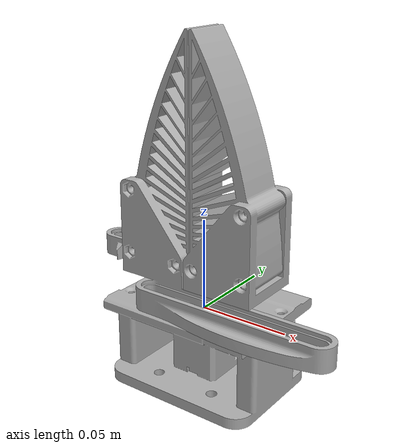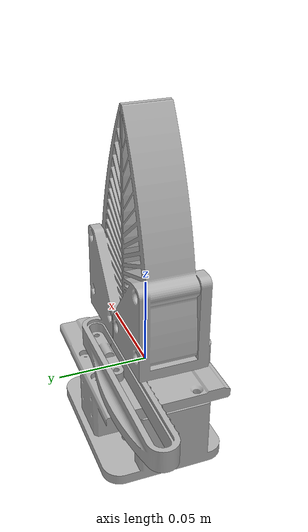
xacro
<?xml version="1.0" ?>
<robot name="gripper_urdf" xmlns:xacro="http://www.ros.org/wiki/xacro">

<xacro:include filename="/home/andres/Documents/jiwon/create_asset/gripper_urdf_description/urdf/materials.xacro" />
<xacro:include filename="/home/andres/Documents/jiwon/create_asset/gripper_urdf_description/urdf/gripper_urdf.trans" />
<xacro:include filename="/home/andres/Documents/jiwon/create_asset/gripper_urdf_description/urdf/gripper_urdf.gazebo" />
<link name="base_link">
  <inertial>
    <origin xyz="-3.8976421872587524e-05 0.005031022969519505 -0.018471415017622762" rpy="0 0 0"/>
    <mass value="1.1963260015017612"/>
    <inertia ixx="0.000695" iyy="0.001149" izz="0.001162" ixy="-0.0" iyz="6e-06" ixz="1e-06"/>
  </inertial>
  <visual>
    <origin xyz="0 0 0" rpy="0 0 0"/>
    <geometry>
      <mesh filename="file:///home/andres/Documents/jiwon/create_asset/gripper_urdf_description/meshes/base_link.stl" scale="0.001 0.001 0.001"/>
    </geometry>
    <material name="silver"/>
  </visual>
  <collision>
    <origin xyz="0 0 0" rpy="0 0 0"/>
    <geometry>
      <mesh filename="file:///home/andres/Documents/jiwon/create_asset/gripper_urdf_description/meshes/base_link.stl" scale="0.001 0.001 0.001"/>
    </geometry>
  </collision>
</link>

<link name="finger1_1">
  <inertial>
    <origin xyz="0.006267940831225318 -0.019307371798998357 0.037197711345199495" rpy="0 0 0"/>
    <mass value="0.7015582516227633"/>
    <inertia ixx="0.000915" iyy="0.001242" izz="0.000564" ixy="0.000115" iyz="0.0001" ixz="-0.000163"/>
  </inertial>
  <visual>
    <origin xyz="-0.005 -0.023 -0.01025" rpy="0 0 0"/>
    <geometry>
      <mesh filename="file:///home/andres/Documents/jiwon/create_asset/gripper_urdf_description/meshes/finger1_1.stl" scale="0.001 0.001 0.001"/>
    </geometry>
    <material name="silver"/>
  </visual>
  <collision>
    <origin xyz="-0.005 -0.023 -0.01025" rpy="0 0 0"/>
    <geometry>
      <mesh filename="file:///home/andres/Documents/jiwon/create_asset/gripper_urdf_description/meshes/finger1_1.stl" scale="0.001 0.001 0.001"/>
    </geometry>
  </collision>
</link>

<link name="finger2_1">
  <inertial>
    <origin xyz="-0.016267982103923186 0.01930737450738287 0.03719773168129449" rpy="0 0 0"/>
    <mass value="0.7015578560870854"/>
    <inertia ixx="0.000915" iyy="0.001242" izz="0.000564" ixy="0.000115" iyz="-0.0001" ixz="0.000163"/>
  </inertial>
  <visual>
    <origin xyz="-0.005 0.023 -0.01025" rpy="0 0 0"/>
    <geometry>
      <mesh filename="file:///home/andres/Documents/jiwon/create_asset/gripper_urdf_description/meshes/finger2_1.stl" scale="0.001 0.001 0.001"/>
    </geometry>
    <material name="silver"/>
  </visual>
  <collision>
    <origin xyz="-0.005 0.023 -0.01025" rpy="0 0 0"/>
    <geometry>
      <mesh filename="file:///home/andres/Documents/jiwon/create_asset/gripper_urdf_description/meshes/finger2_1.stl" scale="0.001 0.001 0.001"/>
    </geometry>
  </collision>
</link>

<joint name="finger1_slider" type="prismatic">
  <origin xyz="0.005 0.023 0.01025" rpy="0 0 0"/>
  <parent link="base_link"/>
  <child link="finger1_1"/>
  <axis xyz="1.0 0.0 0.0"/>
  <limit upper="0.0" lower="0.0" effort="100" velocity="100"/>
</joint>

<joint name="finger2_slider" type="prismatic">
  <origin xyz="0.005 -0.023 0.01025" rpy="0 0 0"/>
  <parent link="base_link"/>
  <child link="finger2_1"/>
  <axis xyz="-1.0 0.0 0.0"/>
  <limit upper="0.0" lower="0.0" effort="100" velocity="100"/>
</joint>

</robot>

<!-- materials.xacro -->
<robot name="gripper_urdf" xmlns:xacro="http://www.ros.org/wiki/xacro" >

<material name="silver">
  <color rgba="0.700 0.700 0.700 1.000"/>
</material>

</robot>

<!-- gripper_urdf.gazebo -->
<robot name="gripper_urdf" xmlns:xacro="http://www.ros.org/wiki/xacro" >

<xacro:property name="body_color" value="Gazebo/Silver" />

<gazebo>
  <plugin name="control" filename="libgazebo_ros_control.so"/>
</gazebo>
<gazebo reference="base_link">
  <material>${body_color}</material>
  <mu1>0.2</mu1>
  <mu2>0.2</mu2>
  <self_collide>true</self_collide>
  <gravity>true</gravity>
</gazebo>

<gazebo reference="finger1_1">
  <material>${body_color}</material>
  <mu1>0.2</mu1>
  <mu2>0.2</mu2>
  <self_collide>true</self_collide>
</gazebo>

<gazebo reference="finger2_1">
  <material>${body_color}</material>
  <mu1>0.2</mu1>
  <mu2>0.2</mu2>
  <self_collide>true</self_collide>
</gazebo>

</robot>
